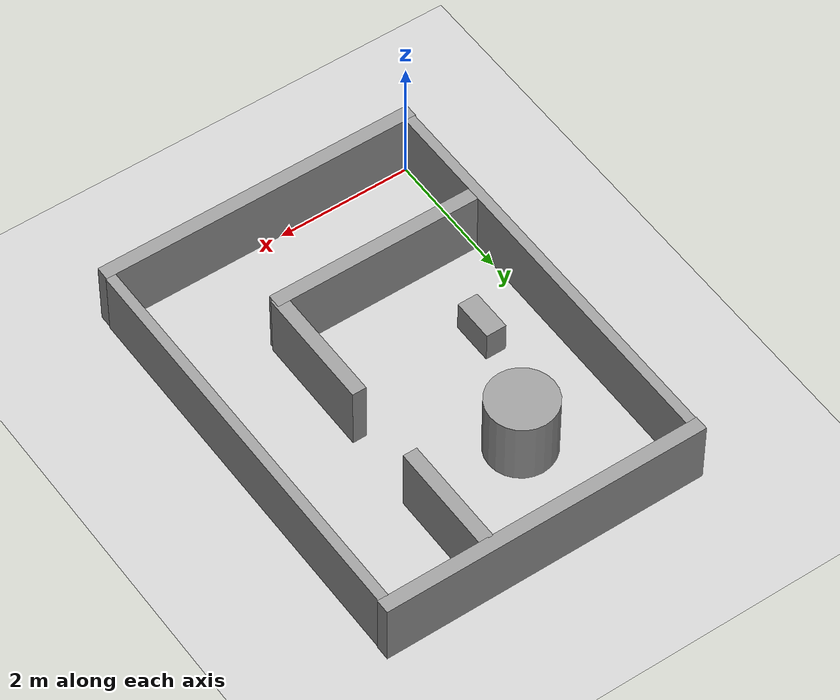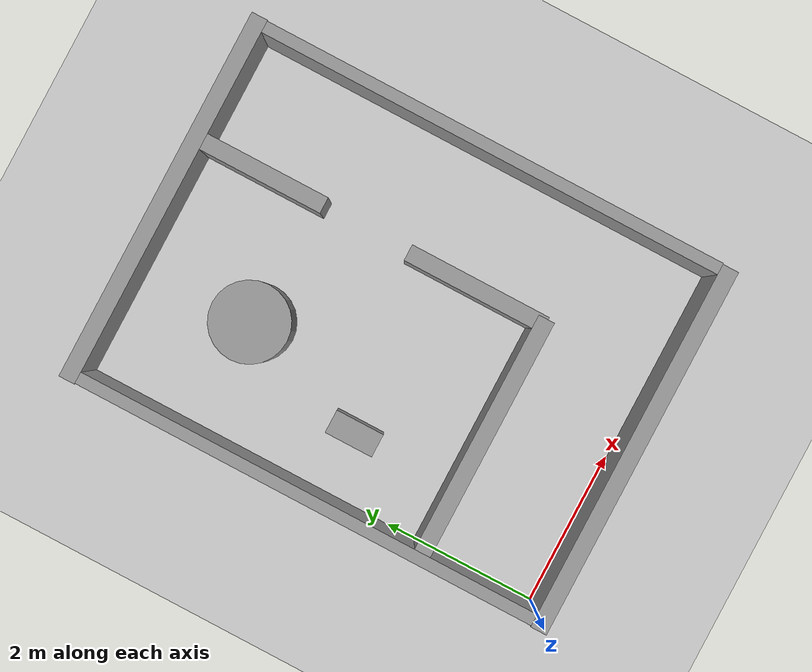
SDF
<sdf version="1.6">
 <world name="default">
  <light name="sun" type="directional">
   <pose>0 0 10 0 -0 0</pose>
   <diffuse>0.8 0.8 0.8 1</diffuse>
   <specular>0.1 0.1 0.1 1</specular>
   <attenuation>
    <range>1000</range>
    <constant>0.9</constant>
    <linear>0.01</linear>
    <quadratic>0.001</quadratic>
   </attenuation>
   <direction>-0.5 0.5 -1</direction>
  </light>
  <model name="ground_plane">
   <static>1</static>
   <link name="link">
    <collision name="collision">
     <geometry><plane><normal>0 0 1</normal><size>100 100</size></plane></geometry>
     <surface><friction><ode><mu>100</mu><mu2>50</mu2></ode></friction></surface>
    </collision>
    <visual name="visual">
     <cast_shadows>0</cast_shadows>
     <geometry><plane><normal>0 0 1</normal><size>100 100</size></plane></geometry>
     <material>
      <script><uri>file://media/materials/scripts/gazebo.material</uri><name>Gazebo/Grey</name></script>
     </material>
    </visual>
   </link>
  </model>
  <gravity>0 0 -9.8</gravity>
  <magnetic_field>6e-06 2.3e-05 -4.2e-05</magnetic_field>
  <atmosphere type="adiabatic"/>
  <physics name="default_physics" default="0" type="ode">
   <max_step_size>0.001</max_step_size>
   <real_time_factor>1</real_time_factor>
   <real_time_update_rate>1000</real_time_update_rate>
  </physics>
  <scene><ambient>0.4 0.4 0.4 1</ambient><background>0.7 0.7 0.7 1</background><shadows>1</shadows></scene>
  <spherical_coordinates>
   <surface_model>EARTH_WGS84</surface_model>
   <latitude_deg>0</latitude_deg>
   <longitude_deg>0</longitude_deg>
   <elevation>0</elevation>
   <heading_deg>0</heading_deg>
  </spherical_coordinates>
  <model name="unit_box_0">
   <static>1</static>
   <pose>2.25118 -0.114276 0.5 0 -0 0</pose>
   <link name="link">
    <inertial>
     <mass>1</mass>
     <inertia>
      <ixx>0.166667</ixx>
      <ixy>0</ixy>
      <ixz>0</ixz>
      <iyy>0.166667</iyy>
      <iyz>0</iyz>
      <izz>0.166667</izz>
     </inertia>
    </inertial>
    <collision name="collision"><geometry><box><size>4.84018 0.209994 1</size></box></geometry></collision>
    <visual name="visual">
     <geometry><box><size>4.84018 0.209994 1</size></box></geometry>
     <material>
      <script><name>Gazebo/Grey</name><uri>file://media/materials/scripts/gazebo.material</uri></script>
     </material>
    </visual>
   </link>
  </model>
  <model name="unit_box_1_clone">
   <static>1</static>
   <pose>-0.078833 3.03713 0.5 0 -0 0</pose>
   <link name="link">
    <inertial>
     <mass>1</mass>
     <inertia>
      <ixx>0.166667</ixx>
      <ixy>0</ixy>
      <ixz>0</ixz>
      <iyy>0.166667</iyy>
      <iyz>0</iyz>
      <izz>0.166667</izz>
     </inertia>
    </inertial>
    <collision name="collision"><geometry><box><size>0.151014 6.09769 1</size></box></geometry></collision>
    <visual name="visual">
     <geometry><box><size>0.151014 6.09769 1</size></box></geometry>
     <material>
      <script><name>Gazebo/Grey</name><uri>file://media/materials/scripts/gazebo.material</uri></script>
     </material>
    </visual>
   </link>
  </model>
  <model name="unit_box_0_clone">
   <static>1</static>
   <pose>2.26356 6.18877 0.5 0 -0 0</pose>
   <link name="link">
    <inertial>
     <mass>1</mass>
     <inertia>
      <ixx>0.166667</ixx>
      <ixy>0</ixy>
      <ixz>0</ixz>
      <iyy>0.166667</iyy>
      <iyz>0</iyz>
      <izz>0.166667</izz>
     </inertia>
    </inertial>
    <collision name="collision"><geometry><box><size>4.85865 0.209994 1</size></box></geometry></collision>
    <visual name="visual">
     <geometry><box><size>4.85865 0.209994 1</size></box></geometry>
     <material>
      <script><name>Gazebo/Grey</name><uri>file://media/materials/scripts/gazebo.material</uri></script>
     </material>
    </visual>
   </link>
  </model>
  <model name="unit_box_1_clone_clone">
   <static>1</static>
   <pose>4.60737 3.03968 0.5 0 -0 0</pose>
   <link name="link">
    <inertial>
     <mass>1</mass>
     <inertia>
      <ixx>0.166667</ixx>
      <ixy>0</ixy>
      <ixz>0</ixz>
      <iyy>0.166667</iyy>
      <iyz>0</iyz>
      <izz>0.166667</izz>
     </inertia>
    </inertial>
    <collision name="collision"><geometry><box><size>0.151014 6.0977 1</size></box></geometry></collision>
    <visual name="visual">
     <geometry><box><size>0.151014 6.0977 1</size></box></geometry>
     <material>
      <script><name>Gazebo/Grey</name><uri>file://media/materials/scripts/gazebo.material</uri></script>
     </material>
    </visual>
   </link>
  </model>
  <model name="unit_box_0_clone_0">
   <static>1</static>
   <pose>1.54132 1.524 0.5 0 -0 0</pose>
   <link name="link">
    <inertial>
     <mass>1</mass>
     <inertia>
      <ixx>0.166667</ixx>
      <ixy>0</ixy>
      <ixz>0</ixz>
      <iyy>0.166667</iyy>
      <iyz>0</iyz>
      <izz>0.166667</izz>
     </inertia>
    </inertial>
    <collision name="collision"><geometry><box><size>3.16831 0.209994 1</size></box></geometry></collision>
    <visual name="visual">
     <geometry><box><size>3.16831 0.209994 1</size></box></geometry>
     <material>
      <script><name>Gazebo/Grey</name><uri>file://media/materials/scripts/gazebo.material</uri></script>
     </material>
    </visual>
   </link>
  </model>
  <model name="unit_box_0_clone_0_clone">
   <static>1</static>
   <pose>3.05178 2.41954 0.5 0 -0 1.57039</pose>
   <link name="link">
    <inertial>
     <mass>1</mass>
     <inertia>
      <ixx>0.166667</ixx>
      <ixy>0</ixy>
      <ixz>0</ixz>
      <iyy>0.166667</iyy>
      <iyz>0</iyz>
      <izz>0.166667</izz>
     </inertia>
    </inertial>
    <collision name="collision"><geometry><box><size>1.83324 0.209994 1</size></box></geometry></collision>
    <visual name="visual">
     <geometry><box><size>1.83324 0.209994 1</size></box></geometry>
     <material>
      <script><name>Gazebo/Grey</name><uri>file://media/materials/scripts/gazebo.material</uri></script>
     </material>
    </visual>
   </link>
  </model>
  <model name="unit_box_0_clone_0_clone_clone">
   <static>1</static>
   <pose>3.07587 5.28499 0.5 0 -0 1.57125</pose>
   <link name="link">
    <inertial>
     <mass>1</mass>
     <inertia>
      <ixx>0.166667</ixx>
      <ixy>0</ixy>
      <ixz>0</ixz>
      <iyy>0.166667</iyy>
      <iyz>0</iyz>
      <izz>0.166667</izz>
     </inertia>
    </inertial>
    <collision name="collision"><geometry><box><size>1.62669 0.209994 1</size></box></geometry></collision>
    <visual name="visual">
     <geometry><box><size>1.62669 0.209994 1</size></box></geometry>
     <material>
      <script><name>Gazebo/Grey</name><uri>file://media/materials/scripts/gazebo.material</uri></script>
     </material>
    </visual>
   </link>
  </model>
  <model name="unit_cylinder_0">
   <pose>1.44927 4.60446 0.499992 -3e-06 3e-06 0</pose>
   <link name="link">
    <inertial>
     <mass>1</mass>
     <inertia><ixx>0.145833</ixx><ixy>0</ixy><ixz>0</ixz><iyy>0.145833</iyy><iyz>0</iyz><izz>0.125</izz></inertia>
    </inertial>
    <collision name="collision">
     <geometry><cylinder><radius>0.5</radius><length>1</length></cylinder></geometry>
    </collision>
    <visual name="visual">
     <geometry><cylinder><radius>0.5</radius><length>1</length></cylinder></geometry>
     <material>
      <script><name>Gazebo/Grey</name><uri>file://media/materials/scripts/gazebo.material</uri></script>
     </material>
    </visual>
   </link>
  </model>
  <model name="unit_box_1">
   <pose>0.830438 2.8927 0.238077 0 -0 1e-06</pose>
   <link name="link">
    <inertial>
     <mass>1</mass>
     <inertia>
      <ixx>0.166667</ixx>
      <ixy>0</ixy>
      <ixz>0</ixz>
      <iyy>0.166667</iyy>
      <iyz>0</iyz>
      <izz>0.166667</izz>
     </inertia>
    </inertial>
    <collision name="collision">
     <geometry><box><size>0.307483 0.639089 0.476155</size></box></geometry>
    </collision>
    <visual name="visual">
     <geometry><box><size>0.307483 0.639089 0.476155</size></box></geometry>
     <material>
      <script><name>Gazebo/Grey</name><uri>file://media/materials/scripts/gazebo.material</uri></script>
     </material>
    </visual>
   </link>
  </model>
 </world>
</sdf>
